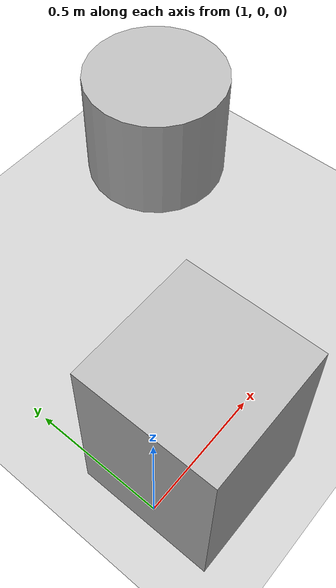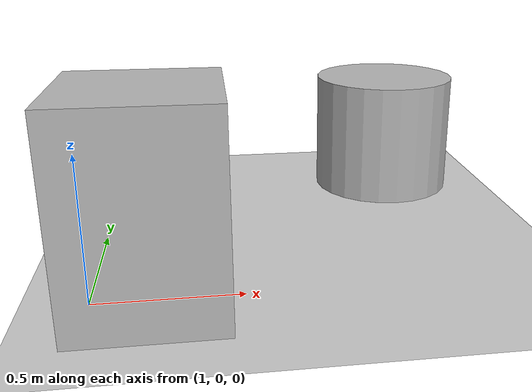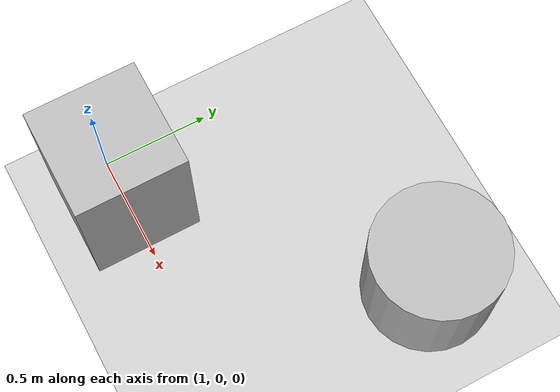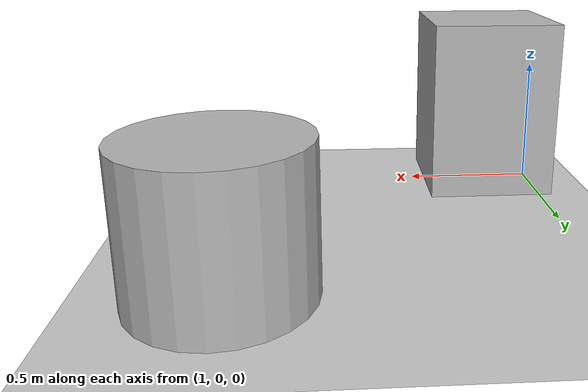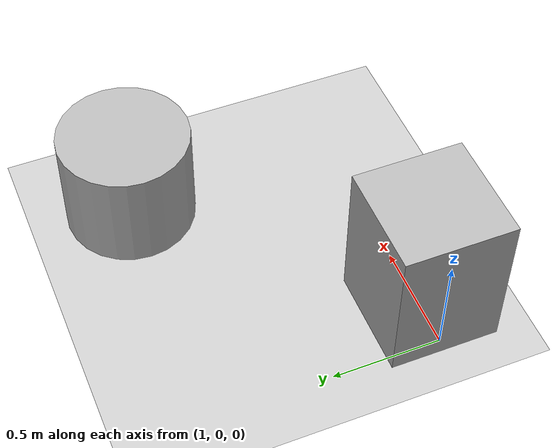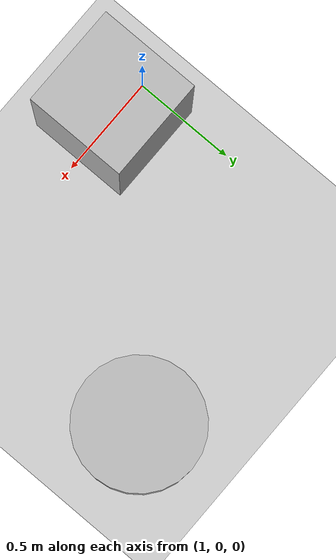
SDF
<?xml version="1.0" ?>
<sdf version="1.9">
  <world name="rover_world">

    <physics name="1ms" type="dart">
      <max_step_size>0.001</max_step_size>
      <real_time_factor>1</real_time_factor>
      <real_time_update_rate>1000</real_time_update_rate>
    </physics>

    <plugin
      filename="gz-sim-physics-system"
      name="gz::sim::systems::Physics"/>

    <plugin
      filename="gz-sim-user-commands-system"
      name="gz::sim::systems::UserCommands"/>

    <plugin
      filename="gz-sim-scene-broadcaster-system"
      name="gz::sim::systems::SceneBroadcaster"/>

    <light type="directional" name="sun">
      <cast_shadows>true</cast_shadows>
      <pose>0 0 10 0 0 0</pose>
      <diffuse>0.8 0.8 0.8 1</diffuse>
      <specular>0.2 0.2 0.2 1</specular>
      <direction>-0.3 0.2 -1</direction>
    </light>

    <model name="ground_plane">
      <static>true</static>
      <link name="link">
        <collision name="collision">
          <geometry>
            <plane>
              <normal>0 0 1</normal>
              <size>30 30</size>
            </plane>
          </geometry>
        </collision>
        <visual name="visual">
          <geometry>
            <plane>
              <normal>0 0 1</normal>
              <size>30 30</size>
            </plane>
          </geometry>
        </visual>
      </link>
    </model>

    <!-- Simple obstacle course -->
    <model name="obstacle_1">
      <static>true</static>
      <pose>1.2 0 0.35 0 0 0</pose>
      <link name="link">
        <collision name="collision">
          <geometry><box><size>0.5 0.5 0.7</size></box></geometry>
        </collision>
        <visual name="visual">
          <geometry><box><size>0.5 0.5 0.7</size></box></geometry>
        </visual>
      </link>
    </model>

    <model name="obstacle_2">
      <static>true</static>
      <pose>2.2 1.0 0.25 0 0 0</pose>
      <link name="link">
        <collision name="collision">
          <geometry><cylinder><radius>0.3</radius><length>0.5</length></cylinder></geometry>
        </collision>
        <visual name="visual">
          <geometry><cylinder><radius>0.3</radius><length>0.5</length></cylinder></geometry>
        </visual>
      </link>
    </model>

  </world>
</sdf>
